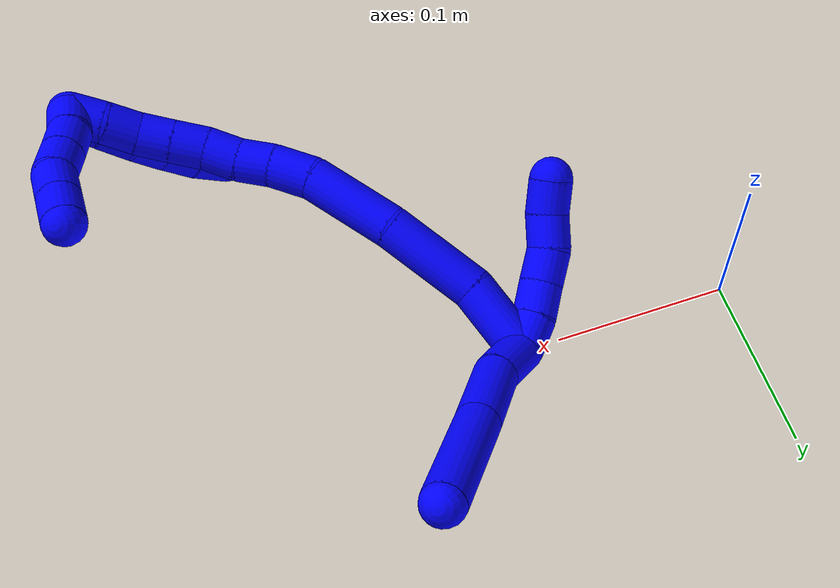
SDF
<sdf version="1.7">
 <world name="default">
  <model name="1">
   <static>0</static>
   <link name="1">
    <collision name="collision-cylinder-e_1_2_8">
     <pose>0.006648 -0.000282 0.014581 0.019307 0.427706 0.004193</pose>
     <geometry><cylinder><radius>0.0125</radius><length>0.032055</length></cylinder></geometry>
     <surface>
      <friction><ode><mu>1.16</mu><mu2>1.16</mu2><slip1>0</slip1><slip2>0</slip2></ode></friction>
      <contact><ode><kp>1e+06</kp><kd>1</kd><max_vel>0</max_vel><min_depth>0.001</min_depth></ode></contact>
     </surface>
    </collision>
    <visual name="visual-cylinder-e_1_2_8">
     <pose>0.006648 -0.000282 0.014581 0.019307 0.427706 0.004193</pose>
     <geometry><cylinder><radius>0.0125</radius><length>0.032055</length></cylinder></geometry>
     <material><ambient>0 0 1 1</ambient></material>
    </visual>
    <collision name="collision-cylinder-e_2_8_9">
     <pose>0.021432 0.004907 0.049889 -0.258045 0.362733 -0.047576</pose>
     <geometry><cylinder><radius>0.0125</radius><length>0.045857</length></cylinder></geometry>
     <surface>
      <friction><ode><mu>1.16</mu><mu2>1.16</mu2><slip1>0</slip1><slip2>0</slip2></ode></friction>
      <contact><ode><kp>1e+06</kp><kd>1</kd><max_vel>0</max_vel><min_depth>0.001</min_depth></ode></contact>
     </surface>
    </collision>
    <visual name="visual-cylinder-e_2_8_9">
     <pose>0.021432 0.004907 0.049889 -0.258045 0.362733 -0.047576</pose>
     <geometry><cylinder><radius>0.0125</radius><length>0.045857</length></cylinder></geometry>
     <material><ambient>0 0 1 1</ambient></material>
    </visual>
    <collision name="collision-cylinder-e_3_9_6">
     <pose>0.041675 0.01795 0.10371 -0.224928 0.342583 -0.039069</pose>
     <geometry><cylinder><radius>0.0125</radius><length>0.072088</length></cylinder></geometry>
     <surface>
      <friction><ode><mu>1.16</mu><mu2>1.16</mu2><slip1>0</slip1><slip2>0</slip2></ode></friction>
      <contact><ode><kp>1e+06</kp><kd>1</kd><max_vel>0</max_vel><min_depth>0.001</min_depth></ode></contact>
     </surface>
    </collision>
    <visual name="visual-cylinder-e_3_9_6">
     <pose>0.041675 0.01795 0.10371 -0.224928 0.342583 -0.039069</pose>
     <geometry><cylinder><radius>0.0125</radius><length>0.072088</length></cylinder></geometry>
     <material><ambient>0 0 1 1</ambient></material>
    </visual>
    <collision name="collision-cylinder-e_1_2_10">
     <pose>-0.008597 -0.002946 -0.004174 2.52689 -1.0346 -2.12388</pose>
     <geometry><cylinder><radius>0.0125</radius><length>0.02</length></cylinder></geometry>
     <surface>
      <friction><ode><mu>1.16</mu><mu2>1.16</mu2><slip1>0</slip1><slip2>0</slip2></ode></friction>
      <contact><ode><kp>1e+06</kp><kd>1</kd><max_vel>0</max_vel><min_depth>0.001</min_depth></ode></contact>
     </surface>
    </collision>
    <visual name="visual-cylinder-e_1_2_10">
     <pose>-0.008597 -0.002946 -0.004174 2.52689 -1.0346 -2.12388</pose>
     <geometry><cylinder><radius>0.0125</radius><length>0.02</length></cylinder></geometry>
     <material><ambient>0 0 1 1</ambient></material>
    </visual>
    <collision name="collision-cylinder-e_2_10_11">
     <pose>-0.025248 -0.010473 -0.012107 2.2581 -0.936459 -1.63786</pose>
     <geometry><cylinder><radius>0.0125</radius><length>0.02</length></cylinder></geometry>
     <surface>
      <friction><ode><mu>1.16</mu><mu2>1.16</mu2><slip1>0</slip1><slip2>0</slip2></ode></friction>
      <contact><ode><kp>1e+06</kp><kd>1</kd><max_vel>0</max_vel><min_depth>0.001</min_depth></ode></contact>
     </surface>
    </collision>
    <visual name="visual-cylinder-e_2_10_11">
     <pose>-0.025248 -0.010473 -0.012107 2.2581 -0.936459 -1.63786</pose>
     <geometry><cylinder><radius>0.0125</radius><length>0.02</length></cylinder></geometry>
     <material><ambient>0 0 1 1</ambient></material>
    </visual>
    <collision name="collision-cylinder-e_3_11_12">
     <pose>-0.042199 -0.019348 -0.017424 1.91874 -1.09653 -1.4333</pose>
     <geometry><cylinder><radius>0.0125</radius><length>0.02</length></cylinder></geometry>
     <surface>
      <friction><ode><mu>1.16</mu><mu2>1.16</mu2><slip1>0</slip1><slip2>0</slip2></ode></friction>
      <contact><ode><kp>1e+06</kp><kd>1</kd><max_vel>0</max_vel><min_depth>0.001</min_depth></ode></contact>
     </surface>
    </collision>
    <visual name="visual-cylinder-e_3_11_12">
     <pose>-0.042199 -0.019348 -0.017424 1.91874 -1.09653 -1.4333</pose>
     <geometry><cylinder><radius>0.0125</radius><length>0.02</length></cylinder></geometry>
     <material><ambient>0 0 1 1</ambient></material>
    </visual>
    <collision name="collision-cylinder-e_4_12_13">
     <pose>-0.058537 -0.030272 -0.019784 1.69129 -0.839378 -0.932865</pose>
     <geometry><cylinder><radius>0.0125</radius><length>0.02</length></cylinder></geometry>
     <surface>
      <friction><ode><mu>1.16</mu><mu2>1.16</mu2><slip1>0</slip1><slip2>0</slip2></ode></friction>
      <contact><ode><kp>1e+06</kp><kd>1</kd><max_vel>0</max_vel><min_depth>0.001</min_depth></ode></contact>
     </surface>
    </collision>
    <visual name="visual-cylinder-e_4_12_13">
     <pose>-0.058537 -0.030272 -0.019784 1.69129 -0.839378 -0.932865</pose>
     <geometry><cylinder><radius>0.0125</radius><length>0.02</length></cylinder></geometry>
     <material><ambient>0 0 1 1</ambient></material>
    </visual>
    <collision name="collision-cylinder-e_5_13_5">
     <pose>-0.074586 -0.041915 -0.019691 1.39381 -1.03647 -0.890621</pose>
     <geometry><cylinder><radius>0.0125</radius><length>0.02</length></cylinder></geometry>
     <surface>
      <friction><ode><mu>1.16</mu><mu2>1.16</mu2><slip1>0</slip1><slip2>0</slip2></ode></friction>
      <contact><ode><kp>1e+06</kp><kd>1</kd><max_vel>0</max_vel><min_depth>0.001</min_depth></ode></contact>
     </surface>
    </collision>
    <visual name="visual-cylinder-e_5_13_5">
     <pose>-0.074586 -0.041915 -0.019691 1.39381 -1.03647 -0.890621</pose>
     <geometry><cylinder><radius>0.0125</radius><length>0.02</length></cylinder></geometry>
     <material><ambient>0 0 1 1</ambient></material>
    </visual>
    <collision name="collision-cylinder-e_1_2_14">
     <pose>-0.004747 -0.021273 -0.001294 1.63154 -0.219166 -0.23278</pose>
     <geometry><cylinder><radius>0.0125</radius><length>0.043669</length></cylinder></geometry>
     <surface>
      <friction><ode><mu>1.16</mu><mu2>1.16</mu2><slip1>0</slip1><slip2>0</slip2></ode></friction>
      <contact><ode><kp>1e+06</kp><kd>1</kd><max_vel>0</max_vel><min_depth>0.001</min_depth></ode></contact>
     </surface>
    </collision>
    <visual name="visual-cylinder-e_1_2_14">
     <pose>-0.004747 -0.021273 -0.001294 1.63154 -0.219166 -0.23278</pose>
     <geometry><cylinder><radius>0.0125</radius><length>0.043669</length></cylinder></geometry>
     <material><ambient>0 0 1 1</ambient></material>
    </visual>
    <collision name="collision-cylinder-e_2_14_15">
     <pose>-0.009152 -0.071353 0.000274 1.4718 0.011834 0.010717</pose>
     <geometry><cylinder><radius>0.0125</radius><length>0.057902</length></cylinder></geometry>
     <surface>
      <friction><ode><mu>1.16</mu><mu2>1.16</mu2><slip1>0</slip1><slip2>0</slip2></ode></friction>
      <contact><ode><kp>1e+06</kp><kd>1</kd><max_vel>0</max_vel><min_depth>0.001</min_depth></ode></contact>
     </surface>
    </collision>
    <visual name="visual-cylinder-e_2_14_15">
     <pose>-0.009152 -0.071353 0.000274 1.4718 0.011834 0.010717</pose>
     <geometry><cylinder><radius>0.0125</radius><length>0.057902</length></cylinder></geometry>
     <material><ambient>0 0 1 1</ambient></material>
    </visual>
    <collision name="collision-cylinder-e_3_15_16">
     <pose>-0.005687 -0.126664 0.002745 1.58552 0.117258 0.118993</pose>
     <geometry><cylinder><radius>0.0125</radius><length>0.053381</length></cylinder></geometry>
     <surface>
      <friction><ode><mu>1.16</mu><mu2>1.16</mu2><slip1>0</slip1><slip2>0</slip2></ode></friction>
      <contact><ode><kp>1e+06</kp><kd>1</kd><max_vel>0</max_vel><min_depth>0.001</min_depth></ode></contact>
     </surface>
    </collision>
    <visual name="visual-cylinder-e_3_15_16">
     <pose>-0.005687 -0.126664 0.002745 1.58552 0.117258 0.118993</pose>
     <geometry><cylinder><radius>0.0125</radius><length>0.053381</length></cylinder></geometry>
     <material><ambient>0 0 1 1</ambient></material>
    </visual>
    <collision name="collision-cylinder-e_4_16_17">
     <pose>0.001743 -0.164787 0.002702 1.54086 0.354839 0.344582</pose>
     <geometry><cylinder><radius>0.0125</radius><length>0.024792</length></cylinder></geometry>
     <surface>
      <friction><ode><mu>1.16</mu><mu2>1.16</mu2><slip1>0</slip1><slip2>0</slip2></ode></friction>
      <contact><ode><kp>1e+06</kp><kd>1</kd><max_vel>0</max_vel><min_depth>0.001</min_depth></ode></contact>
     </surface>
    </collision>
    <visual name="visual-cylinder-e_4_16_17">
     <pose>0.001743 -0.164787 0.002702 1.54086 0.354839 0.344582</pose>
     <geometry><cylinder><radius>0.0125</radius><length>0.024792</length></cylinder></geometry>
     <material><ambient>0 0 1 1</ambient></material>
    </visual>
    <collision name="collision-cylinder-e_5_17_18">
     <pose>0.01076 -0.185228 0.004142 1.44771 0.487218 0.432512</pose>
     <geometry><cylinder><radius>0.0125</radius><length>0.020122</length></cylinder></geometry>
     <surface>
      <friction><ode><mu>1.16</mu><mu2>1.16</mu2><slip1>0</slip1><slip2>0</slip2></ode></friction>
      <contact><ode><kp>1e+06</kp><kd>1</kd><max_vel>0</max_vel><min_depth>0.001</min_depth></ode></contact>
     </surface>
    </collision>
    <visual name="visual-cylinder-e_5_17_18">
     <pose>0.01076 -0.185228 0.004142 1.44771 0.487218 0.432512</pose>
     <geometry><cylinder><radius>0.0125</radius><length>0.020122</length></cylinder></geometry>
     <material><ambient>0 0 1 1</ambient></material>
    </visual>
    <collision name="collision-cylinder-e_6_18_19">
     <pose>0.018481 -0.203469 0.006804 1.40557 0.305508 0.259352</pose>
     <geometry><cylinder><radius>0.0125</radius><length>0.020022</length></cylinder></geometry>
     <surface>
      <friction><ode><mu>1.16</mu><mu2>1.16</mu2><slip1>0</slip1><slip2>0</slip2></ode></friction>
      <contact><ode><kp>1e+06</kp><kd>1</kd><max_vel>0</max_vel><min_depth>0.001</min_depth></ode></contact>
     </surface>
    </collision>
    <visual name="visual-cylinder-e_6_18_19">
     <pose>0.018481 -0.203469 0.006804 1.40557 0.305508 0.259352</pose>
     <geometry><cylinder><radius>0.0125</radius><length>0.020022</length></cylinder></geometry>
     <material><ambient>0 0 1 1</ambient></material>
    </visual>
    <collision name="collision-cylinder-e_7_19_20">
     <pose>0.025509 -0.221534 0.011437 1.23039 0.412739 0.293757</pose>
     <geometry><cylinder><radius>0.0125</radius><length>0.020029</length></cylinder></geometry>
     <surface>
      <friction><ode><mu>1.16</mu><mu2>1.16</mu2><slip1>0</slip1><slip2>0</slip2></ode></friction>
      <contact><ode><kp>1e+06</kp><kd>1</kd><max_vel>0</max_vel><min_depth>0.001</min_depth></ode></contact>
     </surface>
    </collision>
    <visual name="visual-cylinder-e_7_19_20">
     <pose>0.025509 -0.221534 0.011437 1.23039 0.412739 0.293757</pose>
     <geometry><cylinder><radius>0.0125</radius><length>0.020029</length></cylinder></geometry>
     <material><ambient>0 0 1 1</ambient></material>
    </visual>
    <collision name="collision-cylinder-e_8_20_21">
     <pose>0.033423 -0.238858 0.017605 1.22712 0.400016 0.283605</pose>
     <geometry><cylinder><radius>0.0125</radius><length>0.020011</length></cylinder></geometry>
     <surface>
      <friction><ode><mu>1.16</mu><mu2>1.16</mu2><slip1>0</slip1><slip2>0</slip2></ode></friction>
      <contact><ode><kp>1e+06</kp><kd>1</kd><max_vel>0</max_vel><min_depth>0.001</min_depth></ode></contact>
     </surface>
    </collision>
    <visual name="visual-cylinder-e_8_20_21">
     <pose>0.033423 -0.238858 0.017605 1.22712 0.400016 0.283605</pose>
     <geometry><cylinder><radius>0.0125</radius><length>0.020011</length></cylinder></geometry>
     <material><ambient>0 0 1 1</ambient></material>
    </visual>
    <collision name="collision-cylinder-e_9_21_22">
     <pose>0.039801 -0.255754 0.025861 1.011 0.250467 0.13913</pose>
     <geometry><cylinder><radius>0.0125</radius><length>0.020026</length></cylinder></geometry>
     <surface>
      <friction><ode><mu>1.16</mu><mu2>1.16</mu2><slip1>0</slip1><slip2>0</slip2></ode></friction>
      <contact><ode><kp>1e+06</kp><kd>1</kd><max_vel>0</max_vel><min_depth>0.001</min_depth></ode></contact>
     </surface>
    </collision>
    <visual name="visual-cylinder-e_9_21_22">
     <pose>0.039801 -0.255754 0.025861 1.011 0.250467 0.13913</pose>
     <geometry><cylinder><radius>0.0125</radius><length>0.020026</length></cylinder></geometry>
     <material><ambient>0 0 1 1</ambient></material>
    </visual>
    <collision name="collision-cylinder-e_10_22_1">
     <pose>0.045699 -0.272841 0.034201 1.2256 0.347841 0.245816</pose>
     <geometry><cylinder><radius>0.0125</radius><length>0.020047</length></cylinder></geometry>
     <surface>
      <friction><ode><mu>1.16</mu><mu2>1.16</mu2><slip1>0</slip1><slip2>0</slip2></ode></friction>
      <contact><ode><kp>1e+06</kp><kd>1</kd><max_vel>0</max_vel><min_depth>0.001</min_depth></ode></contact>
     </surface>
    </collision>
    <visual name="visual-cylinder-e_10_22_1">
     <pose>0.045699 -0.272841 0.034201 1.2256 0.347841 0.245816</pose>
     <geometry><cylinder><radius>0.0125</radius><length>0.020047</length></cylinder></geometry>
     <material><ambient>0 0 1 1</ambient></material>
    </visual>
    <collision name="collision-cylinder-e_1_1_23">
     <pose>0.04786 -0.273465 0.031869 -2.16082 -0.125954 0.235144</pose>
     <geometry><cylinder><radius>0.0125</radius><length>0.02</length></cylinder></geometry>
     <surface>
      <friction><ode><mu>1.16</mu><mu2>1.16</mu2><slip1>0</slip1><slip2>0</slip2></ode></friction>
      <contact><ode><kp>1e+06</kp><kd>1</kd><max_vel>0</max_vel><min_depth>0.001</min_depth></ode></contact>
     </surface>
    </collision>
    <visual name="visual-cylinder-e_1_1_23">
     <pose>0.04786 -0.273465 0.031869 -2.16082 -0.125954 0.235144</pose>
     <geometry><cylinder><radius>0.0125</radius><length>0.02</length></cylinder></geometry>
     <material><ambient>0 0 1 1</ambient></material>
    </visual>
    <collision name="collision-cylinder-e_2_23_24">
     <pose>0.044681 -0.257178 0.020728 -2.18078 -0.19343 0.368122</pose>
     <geometry><cylinder><radius>0.0125</radius><length>0.02</length></cylinder></geometry>
     <surface>
      <friction><ode><mu>1.16</mu><mu2>1.16</mu2><slip1>0</slip1><slip2>0</slip2></ode></friction>
      <contact><ode><kp>1e+06</kp><kd>1</kd><max_vel>0</max_vel><min_depth>0.001</min_depth></ode></contact>
     </surface>
    </collision>
    <visual name="visual-cylinder-e_2_23_24">
     <pose>0.044681 -0.257178 0.020728 -2.18078 -0.19343 0.368122</pose>
     <geometry><cylinder><radius>0.0125</radius><length>0.02</length></cylinder></geometry>
     <material><ambient>0 0 1 1</ambient></material>
    </visual>
    <collision name="collision-cylinder-e_3_24_25">
     <pose>0.041313 -0.24288 0.007438 -2.4574 -0.145107 0.402676</pose>
     <geometry><cylinder><radius>0.0125</radius><length>0.02</length></cylinder></geometry>
     <surface>
      <friction><ode><mu>1.16</mu><mu2>1.16</mu2><slip1>0</slip1><slip2>0</slip2></ode></friction>
      <contact><ode><kp>1e+06</kp><kd>1</kd><max_vel>0</max_vel><min_depth>0.001</min_depth></ode></contact>
     </surface>
    </collision>
    <visual name="visual-cylinder-e_3_24_25">
     <pose>0.041313 -0.24288 0.007438 -2.4574 -0.145107 0.402676</pose>
     <geometry><cylinder><radius>0.0125</radius><length>0.02</length></cylinder></geometry>
     <material><ambient>0 0 1 1</ambient></material>
    </visual>
    <collision name="collision-cylinder-e_4_25_26">
     <pose>0.037763 -0.229935 -0.007357 -2.38777 -0.212022 0.525232</pose>
     <geometry><cylinder><radius>0.0125</radius><length>0.02</length></cylinder></geometry>
     <surface>
      <friction><ode><mu>1.16</mu><mu2>1.16</mu2><slip1>0</slip1><slip2>0</slip2></ode></friction>
      <contact><ode><kp>1e+06</kp><kd>1</kd><max_vel>0</max_vel><min_depth>0.001</min_depth></ode></contact>
     </surface>
    </collision>
    <visual name="visual-cylinder-e_4_25_26">
     <pose>0.037763 -0.229935 -0.007357 -2.38777 -0.212022 0.525232</pose>
     <geometry><cylinder><radius>0.0125</radius><length>0.02</length></cylinder></geometry>
     <material><ambient>0 0 1 1</ambient></material>
    </visual>
    <collision name="collision-cylinder-e_5_26_4">
     <pose>0.032088 -0.216779 -0.021226 -2.37717 -0.365141 0.861105</pose>
     <geometry><cylinder><radius>0.0125</radius><length>0.02</length></cylinder></geometry>
     <surface>
      <friction><ode><mu>1.16</mu><mu2>1.16</mu2><slip1>0</slip1><slip2>0</slip2></ode></friction>
      <contact><ode><kp>1e+06</kp><kd>1</kd><max_vel>0</max_vel><min_depth>0.001</min_depth></ode></contact>
     </surface>
    </collision>
    <visual name="visual-cylinder-e_5_26_4">
     <pose>0.032088 -0.216779 -0.021226 -2.37717 -0.365141 0.861105</pose>
     <geometry><cylinder><radius>0.0125</radius><length>0.02</length></cylinder></geometry>
     <material><ambient>0 0 1 1</ambient></material>
    </visual>
    <collision name="collision-cylinder-e_1_1_27">
     <pose>0.051283 -0.27532 0.044771 -0.713323 0.218379 -0.081647</pose>
     <geometry><cylinder><radius>0.0125</radius><length>0.02</length></cylinder></geometry>
     <surface>
      <friction><ode><mu>1.16</mu><mu2>1.16</mu2><slip1>0</slip1><slip2>0</slip2></ode></friction>
      <contact><ode><kp>1e+06</kp><kd>1</kd><max_vel>0</max_vel><min_depth>0.001</min_depth></ode></contact>
     </surface>
    </collision>
    <visual name="visual-cylinder-e_1_1_27">
     <pose>0.051283 -0.27532 0.044771 -0.713323 0.218379 -0.081647</pose>
     <geometry><cylinder><radius>0.0125</radius><length>0.02</length></cylinder></geometry>
     <material><ambient>0 0 1 1</ambient></material>
    </visual>
    <collision name="collision-cylinder-e_2_27_28">
     <pose>0.057156 -0.264113 0.060093 -0.545515 0.379774 -0.107426</pose>
     <geometry><cylinder><radius>0.0125</radius><length>0.02</length></cylinder></geometry>
     <surface>
      <friction><ode><mu>1.16</mu><mu2>1.16</mu2><slip1>0</slip1><slip2>0</slip2></ode></friction>
      <contact><ode><kp>1e+06</kp><kd>1</kd><max_vel>0</max_vel><min_depth>0.001</min_depth></ode></contact>
     </surface>
    </collision>
    <visual name="visual-cylinder-e_2_27_28">
     <pose>0.057156 -0.264113 0.060093 -0.545515 0.379774 -0.107426</pose>
     <geometry><cylinder><radius>0.0125</radius><length>0.02</length></cylinder></geometry>
     <material><ambient>0 0 1 1</ambient></material>
    </visual>
    <collision name="collision-cylinder-e_3_28_29">
     <pose>0.064465 -0.254595 0.076092 -0.527927 0.368419 -0.100629</pose>
     <geometry><cylinder><radius>0.0125</radius><length>0.02</length></cylinder></geometry>
     <surface>
      <friction><ode><mu>1.16</mu><mu2>1.16</mu2><slip1>0</slip1><slip2>0</slip2></ode></friction>
      <contact><ode><kp>1e+06</kp><kd>1</kd><max_vel>0</max_vel><min_depth>0.001</min_depth></ode></contact>
     </surface>
    </collision>
    <visual name="visual-cylinder-e_3_28_29">
     <pose>0.064465 -0.254595 0.076092 -0.527927 0.368419 -0.100629</pose>
     <geometry><cylinder><radius>0.0125</radius><length>0.02</length></cylinder></geometry>
     <material><ambient>0 0 1 1</ambient></material>
    </visual>
    <collision name="collision-cylinder-e_4_29_30">
     <pose>0.070118 -0.242586 0.090659 -0.843345 0.20665 -0.092963</pose>
     <geometry><cylinder><radius>0.0125</radius><length>0.02</length></cylinder></geometry>
     <surface>
      <friction><ode><mu>1.16</mu><mu2>1.16</mu2><slip1>0</slip1><slip2>0</slip2></ode></friction>
      <contact><ode><kp>1e+06</kp><kd>1</kd><max_vel>0</max_vel><min_depth>0.001</min_depth></ode></contact>
     </surface>
    </collision>
    <visual name="visual-cylinder-e_4_29_30">
     <pose>0.070118 -0.242586 0.090659 -0.843345 0.20665 -0.092963</pose>
     <geometry><cylinder><radius>0.0125</radius><length>0.02</length></cylinder></geometry>
     <material><ambient>0 0 1 1</ambient></material>
    </visual>
    <collision name="collision-cylinder-e_5_30_3">
     <pose>0.074235 -0.227942 0.103643 -0.847434 0.208067 -0.094117</pose>
     <geometry><cylinder><radius>0.0125</radius><length>0.02</length></cylinder></geometry>
     <surface>
      <friction><ode><mu>1.16</mu><mu2>1.16</mu2><slip1>0</slip1><slip2>0</slip2></ode></friction>
      <contact><ode><kp>1e+06</kp><kd>1</kd><max_vel>0</max_vel><min_depth>0.001</min_depth></ode></contact>
     </surface>
    </collision>
    <visual name="visual-cylinder-e_5_30_3">
     <pose>0.074235 -0.227942 0.103643 -0.847434 0.208067 -0.094117</pose>
     <geometry><cylinder><radius>0.0125</radius><length>0.02</length></cylinder></geometry>
     <material><ambient>0 0 1 1</ambient></material>
    </visual>
    <collision name="collision-sphere-3">
     <pose>0.076301 -0.220607 0.11012 0 -0 0</pose>
     <geometry><sphere><radius>0.0125</radius></sphere></geometry>
     <surface>
      <friction><ode><mu>1.16</mu><mu2>1.16</mu2><slip1>0</slip1><slip2>0</slip2></ode></friction>
      <contact><ode><kp>1e+06</kp><kd>1</kd><max_vel>0</max_vel><min_depth>0.001</min_depth></ode></contact>
     </surface>
    </collision>
    <visual name="visual-sphere-3">
     <pose>0.076301 -0.220607 0.11012 0 -0 0</pose>
     <geometry><sphere><radius>0.0125</radius></sphere></geometry>
     <material><ambient>0 0 1 1</ambient></material>
    </visual>
    <collision name="collision-sphere-30">
     <pose>0.07217 -0.235276 0.097167 0 -0 0</pose>
     <geometry><sphere><radius>0.0125</radius></sphere></geometry>
     <surface>
      <friction><ode><mu>1.16</mu><mu2>1.16</mu2><slip1>0</slip1><slip2>0</slip2></ode></friction>
      <contact><ode><kp>1e+06</kp><kd>1</kd><max_vel>0</max_vel><min_depth>0.001</min_depth></ode></contact>
     </surface>
    </collision>
    <visual name="visual-sphere-30">
     <pose>0.07217 -0.235276 0.097167 0 -0 0</pose>
     <geometry><sphere><radius>0.0125</radius></sphere></geometry>
     <material><ambient>0 0 1 1</ambient></material>
    </visual>
    <collision name="collision-sphere-29">
     <pose>0.068066 -0.249895 0.084151 0 -0 0</pose>
     <geometry><sphere><radius>0.0125</radius></sphere></geometry>
     <surface>
      <friction><ode><mu>1.16</mu><mu2>1.16</mu2><slip1>0</slip1><slip2>0</slip2></ode></friction>
      <contact><ode><kp>1e+06</kp><kd>1</kd><max_vel>0</max_vel><min_depth>0.001</min_depth></ode></contact>
     </surface>
    </collision>
    <visual name="visual-sphere-29">
     <pose>0.068066 -0.249895 0.084151 0 -0 0</pose>
     <geometry><sphere><radius>0.0125</radius></sphere></geometry>
     <material><ambient>0 0 1 1</ambient></material>
    </visual>
    <collision name="collision-sphere-28">
     <pose>0.060863 -0.259294 0.068033 0 -0 0</pose>
     <geometry><sphere><radius>0.0125</radius></sphere></geometry>
     <surface>
      <friction><ode><mu>1.16</mu><mu2>1.16</mu2><slip1>0</slip1><slip2>0</slip2></ode></friction>
      <contact><ode><kp>1e+06</kp><kd>1</kd><max_vel>0</max_vel><min_depth>0.001</min_depth></ode></contact>
     </surface>
    </collision>
    <visual name="visual-sphere-28">
     <pose>0.060863 -0.259294 0.068033 0 -0 0</pose>
     <geometry><sphere><radius>0.0125</radius></sphere></geometry>
     <material><ambient>0 0 1 1</ambient></material>
    </visual>
    <collision name="collision-sphere-27">
     <pose>0.053449 -0.268932 0.052154 0 -0 0</pose>
     <geometry><sphere><radius>0.0125</radius></sphere></geometry>
     <surface>
      <friction><ode><mu>1.16</mu><mu2>1.16</mu2><slip1>0</slip1><slip2>0</slip2></ode></friction>
      <contact><ode><kp>1e+06</kp><kd>1</kd><max_vel>0</max_vel><min_depth>0.001</min_depth></ode></contact>
     </surface>
    </collision>
    <visual name="visual-sphere-27">
     <pose>0.053449 -0.268932 0.052154 0 -0 0</pose>
     <geometry><sphere><radius>0.0125</radius></sphere></geometry>
     <material><ambient>0 0 1 1</ambient></material>
    </visual>
    <collision name="collision-sphere-4">
     <pose>0.028517 -0.210314 -0.027968 0 -0 0</pose>
     <geometry><sphere><radius>0.0125</radius></sphere></geometry>
     <surface>
      <friction><ode><mu>1.16</mu><mu2>1.16</mu2><slip1>0</slip1><slip2>0</slip2></ode></friction>
      <contact><ode><kp>1e+06</kp><kd>1</kd><max_vel>0</max_vel><min_depth>0.001</min_depth></ode></contact>
     </surface>
    </collision>
    <visual name="visual-sphere-4">
     <pose>0.028517 -0.210314 -0.027968 0 -0 0</pose>
     <geometry><sphere><radius>0.0125</radius></sphere></geometry>
     <material><ambient>0 0 1 1</ambient></material>
    </visual>
    <collision name="collision-sphere-26">
     <pose>0.035658 -0.223244 -0.014485 0 -0 0</pose>
     <geometry><sphere><radius>0.0125</radius></sphere></geometry>
     <surface>
      <friction><ode><mu>1.16</mu><mu2>1.16</mu2><slip1>0</slip1><slip2>0</slip2></ode></friction>
      <contact><ode><kp>1e+06</kp><kd>1</kd><max_vel>0</max_vel><min_depth>0.001</min_depth></ode></contact>
     </surface>
    </collision>
    <visual name="visual-sphere-26">
     <pose>0.035658 -0.223244 -0.014485 0 -0 0</pose>
     <geometry><sphere><radius>0.0125</radius></sphere></geometry>
     <material><ambient>0 0 1 1</ambient></material>
    </visual>
    <collision name="collision-sphere-25">
     <pose>0.039867 -0.236626 -0.000229 0 -0 0</pose>
     <geometry><sphere><radius>0.0125</radius></sphere></geometry>
     <surface>
      <friction><ode><mu>1.16</mu><mu2>1.16</mu2><slip1>0</slip1><slip2>0</slip2></ode></friction>
      <contact><ode><kp>1e+06</kp><kd>1</kd><max_vel>0</max_vel><min_depth>0.001</min_depth></ode></contact>
     </surface>
    </collision>
    <visual name="visual-sphere-25">
     <pose>0.039867 -0.236626 -0.000229 0 -0 0</pose>
     <geometry><sphere><radius>0.0125</radius></sphere></geometry>
     <material><ambient>0 0 1 1</ambient></material>
    </visual>
    <collision name="collision-sphere-24">
     <pose>0.042759 -0.249134 0.015106 0 -0 0</pose>
     <geometry><sphere><radius>0.0125</radius></sphere></geometry>
     <surface>
      <friction><ode><mu>1.16</mu><mu2>1.16</mu2><slip1>0</slip1><slip2>0</slip2></ode></friction>
      <contact><ode><kp>1e+06</kp><kd>1</kd><max_vel>0</max_vel><min_depth>0.001</min_depth></ode></contact>
     </surface>
    </collision>
    <visual name="visual-sphere-24">
     <pose>0.042759 -0.249134 0.015106 0 -0 0</pose>
     <geometry><sphere><radius>0.0125</radius></sphere></geometry>
     <material><ambient>0 0 1 1</ambient></material>
    </visual>
    <collision name="collision-sphere-23">
     <pose>0.046604 -0.265221 0.02635 0 -0 0</pose>
     <geometry><sphere><radius>0.0125</radius></sphere></geometry>
     <surface>
      <friction><ode><mu>1.16</mu><mu2>1.16</mu2><slip1>0</slip1><slip2>0</slip2></ode></friction>
      <contact><ode><kp>1e+06</kp><kd>1</kd><max_vel>0</max_vel><min_depth>0.001</min_depth></ode></contact>
     </surface>
    </collision>
    <visual name="visual-sphere-23">
     <pose>0.046604 -0.265221 0.02635 0 -0 0</pose>
     <geometry><sphere><radius>0.0125</radius></sphere></geometry>
     <material><ambient>0 0 1 1</ambient></material>
    </visual>
    <collision name="collision-sphere-1">
     <pose>0.049116 -0.281708 0.037389 0 -0 0</pose>
     <geometry><sphere><radius>0.0125</radius></sphere></geometry>
     <surface>
      <friction><ode><mu>1.16</mu><mu2>1.16</mu2><slip1>0</slip1><slip2>0</slip2></ode></friction>
      <contact><ode><kp>1e+06</kp><kd>1</kd><max_vel>0</max_vel><min_depth>0.001</min_depth></ode></contact>
     </surface>
    </collision>
    <visual name="visual-sphere-1">
     <pose>0.049116 -0.281708 0.037389 0 -0 0</pose>
     <geometry><sphere><radius>0.0125</radius></sphere></geometry>
     <material><ambient>0 0 1 1</ambient></material>
    </visual>
    <collision name="collision-sphere-22">
     <pose>0.042283 -0.263974 0.031012 0 -0 0</pose>
     <geometry><sphere><radius>0.0125</radius></sphere></geometry>
     <surface>
      <friction><ode><mu>1.16</mu><mu2>1.16</mu2><slip1>0</slip1><slip2>0</slip2></ode></friction>
      <contact><ode><kp>1e+06</kp><kd>1</kd><max_vel>0</max_vel><min_depth>0.001</min_depth></ode></contact>
     </surface>
    </collision>
    <visual name="visual-sphere-22">
     <pose>0.042283 -0.263974 0.031012 0 -0 0</pose>
     <geometry><sphere><radius>0.0125</radius></sphere></geometry>
     <material><ambient>0 0 1 1</ambient></material>
    </visual>
    <collision name="collision-sphere-21">
     <pose>0.037319 -0.247534 0.02071 0 -0 0</pose>
     <geometry><sphere><radius>0.0125</radius></sphere></geometry>
     <surface>
      <friction><ode><mu>1.16</mu><mu2>1.16</mu2><slip1>0</slip1><slip2>0</slip2></ode></friction>
      <contact><ode><kp>1e+06</kp><kd>1</kd><max_vel>0</max_vel><min_depth>0.001</min_depth></ode></contact>
     </surface>
    </collision>
    <visual name="visual-sphere-21">
     <pose>0.037319 -0.247534 0.02071 0 -0 0</pose>
     <geometry><sphere><radius>0.0125</radius></sphere></geometry>
     <material><ambient>0 0 1 1</ambient></material>
    </visual>
    <collision name="collision-sphere-11">
     <pose>-0.033302 -0.015054 -0.015867 0 -0 0</pose>
     <geometry><sphere><radius>0.0125</radius></sphere></geometry>
     <surface>
      <friction><ode><mu>1.16</mu><mu2>1.16</mu2><slip1>0</slip1><slip2>0</slip2></ode></friction>
      <contact><ode><kp>1e+06</kp><kd>1</kd><max_vel>0</max_vel><min_depth>0.001</min_depth></ode></contact>
     </surface>
    </collision>
    <visual name="visual-sphere-11">
     <pose>-0.033302 -0.015054 -0.015867 0 -0 0</pose>
     <geometry><sphere><radius>0.0125</radius></sphere></geometry>
     <material><ambient>0 0 1 1</ambient></material>
    </visual>
    <collision name="collision-sphere-10">
     <pose>-0.017193 -0.005893 -0.008347 0 -0 0</pose>
     <geometry><sphere><radius>0.0125</radius></sphere></geometry>
     <surface>
      <friction><ode><mu>1.16</mu><mu2>1.16</mu2><slip1>0</slip1><slip2>0</slip2></ode></friction>
      <contact><ode><kp>1e+06</kp><kd>1</kd><max_vel>0</max_vel><min_depth>0.001</min_depth></ode></contact>
     </surface>
    </collision>
    <visual name="visual-sphere-10">
     <pose>-0.017193 -0.005893 -0.008347 0 -0 0</pose>
     <geometry><sphere><radius>0.0125</radius></sphere></geometry>
     <material><ambient>0 0 1 1</ambient></material>
    </visual>
    <collision name="collision-sphere-6">
     <pose>0.053783 0.025522 0.136804 0 -0 0</pose>
     <geometry><sphere><radius>0.0125</radius></sphere></geometry>
     <surface>
      <friction><ode><mu>1.16</mu><mu2>1.16</mu2><slip1>0</slip1><slip2>0</slip2></ode></friction>
      <contact><ode><kp>1e+06</kp><kd>1</kd><max_vel>0</max_vel><min_depth>0.001</min_depth></ode></contact>
     </surface>
    </collision>
    <visual name="visual-sphere-6">
     <pose>0.053783 0.025522 0.136804 0 -0 0</pose>
     <geometry><sphere><radius>0.0125</radius></sphere></geometry>
     <material><ambient>0 0 1 1</ambient></material>
    </visual>
    <collision name="collision-sphere-9">
     <pose>0.029568 0.010378 0.070616 0 -0 0</pose>
     <geometry><sphere><radius>0.0125</radius></sphere></geometry>
     <surface>
      <friction><ode><mu>1.16</mu><mu2>1.16</mu2><slip1>0</slip1><slip2>0</slip2></ode></friction>
      <contact><ode><kp>1e+06</kp><kd>1</kd><max_vel>0</max_vel><min_depth>0.001</min_depth></ode></contact>
     </surface>
    </collision>
    <visual name="visual-sphere-9">
     <pose>0.029568 0.010378 0.070616 0 -0 0</pose>
     <geometry><sphere><radius>0.0125</radius></sphere></geometry>
     <material><ambient>0 0 1 1</ambient></material>
    </visual>
    <collision name="collision-sphere-2">
     <geometry><sphere><radius>0.0125</radius></sphere></geometry>
     <surface>
      <friction><ode><mu>1.16</mu><mu2>1.16</mu2><slip1>0</slip1><slip2>0</slip2></ode></friction>
      <contact><ode><kp>1e+06</kp><kd>1</kd><max_vel>0</max_vel><min_depth>0.001</min_depth></ode></contact>
     </surface>
    </collision>
    <visual name="visual-sphere-2">
     <geometry><sphere><radius>0.0125</radius></sphere></geometry>
     <material><ambient>0 0 1 1</ambient></material>
    </visual>
    <collision name="collision-sphere-19">
     <pose>0.021492 -0.212886 0.008374 0 -0 0</pose>
     <geometry><sphere><radius>0.0125</radius></sphere></geometry>
     <surface>
      <friction><ode><mu>1.16</mu><mu2>1.16</mu2><slip1>0</slip1><slip2>0</slip2></ode></friction>
      <contact><ode><kp>1e+06</kp><kd>1</kd><max_vel>0</max_vel><min_depth>0.001</min_depth></ode></contact>
     </surface>
    </collision>
    <visual name="visual-sphere-19">
     <pose>0.021492 -0.212886 0.008374 0 -0 0</pose>
     <geometry><sphere><radius>0.0125</radius></sphere></geometry>
     <material><ambient>0 0 1 1</ambient></material>
    </visual>
    <collision name="collision-sphere-8">
     <pose>0.013296 -0.000563 0.029162 0 -0 0</pose>
     <geometry><sphere><radius>0.0125</radius></sphere></geometry>
     <surface>
      <friction><ode><mu>1.16</mu><mu2>1.16</mu2><slip1>0</slip1><slip2>0</slip2></ode></friction>
      <contact><ode><kp>1e+06</kp><kd>1</kd><max_vel>0</max_vel><min_depth>0.001</min_depth></ode></contact>
     </surface>
    </collision>
    <visual name="visual-sphere-8">
     <pose>0.013296 -0.000563 0.029162 0 -0 0</pose>
     <geometry><sphere><radius>0.0125</radius></sphere></geometry>
     <material><ambient>0 0 1 1</ambient></material>
    </visual>
    <collision name="collision-sphere-12">
     <pose>-0.051095 -0.023641 -0.018982 0 -0 0</pose>
     <geometry><sphere><radius>0.0125</radius></sphere></geometry>
     <surface>
      <friction><ode><mu>1.16</mu><mu2>1.16</mu2><slip1>0</slip1><slip2>0</slip2></ode></friction>
      <contact><ode><kp>1e+06</kp><kd>1</kd><max_vel>0</max_vel><min_depth>0.001</min_depth></ode></contact>
     </surface>
    </collision>
    <visual name="visual-sphere-12">
     <pose>-0.051095 -0.023641 -0.018982 0 -0 0</pose>
     <geometry><sphere><radius>0.0125</radius></sphere></geometry>
     <material><ambient>0 0 1 1</ambient></material>
    </visual>
    <collision name="collision-sphere-13">
     <pose>-0.06598 -0.036902 -0.020587 0 -0 0</pose>
     <geometry><sphere><radius>0.0125</radius></sphere></geometry>
     <surface>
      <friction><ode><mu>1.16</mu><mu2>1.16</mu2><slip1>0</slip1><slip2>0</slip2></ode></friction>
      <contact><ode><kp>1e+06</kp><kd>1</kd><max_vel>0</max_vel><min_depth>0.001</min_depth></ode></contact>
     </surface>
    </collision>
    <visual name="visual-sphere-13">
     <pose>-0.06598 -0.036902 -0.020587 0 -0 0</pose>
     <geometry><sphere><radius>0.0125</radius></sphere></geometry>
     <material><ambient>0 0 1 1</ambient></material>
    </visual>
    <collision name="collision-sphere-5">
     <pose>-0.083192 -0.046928 -0.018794 0 -0 0</pose>
     <geometry><sphere><radius>0.0125</radius></sphere></geometry>
     <surface>
      <friction><ode><mu>1.16</mu><mu2>1.16</mu2><slip1>0</slip1><slip2>0</slip2></ode></friction>
      <contact><ode><kp>1e+06</kp><kd>1</kd><max_vel>0</max_vel><min_depth>0.001</min_depth></ode></contact>
     </surface>
    </collision>
    <visual name="visual-sphere-5">
     <pose>-0.083192 -0.046928 -0.018794 0 -0 0</pose>
     <geometry><sphere><radius>0.0125</radius></sphere></geometry>
     <material><ambient>0 0 1 1</ambient></material>
    </visual>
    <collision name="collision-sphere-14">
     <pose>-0.009494 -0.042546 -0.002588 0 -0 0</pose>
     <geometry><sphere><radius>0.0125</radius></sphere></geometry>
     <surface>
      <friction><ode><mu>1.16</mu><mu2>1.16</mu2><slip1>0</slip1><slip2>0</slip2></ode></friction>
      <contact><ode><kp>1e+06</kp><kd>1</kd><max_vel>0</max_vel><min_depth>0.001</min_depth></ode></contact>
     </surface>
    </collision>
    <visual name="visual-sphere-14">
     <pose>-0.009494 -0.042546 -0.002588 0 -0 0</pose>
     <geometry><sphere><radius>0.0125</radius></sphere></geometry>
     <material><ambient>0 0 1 1</ambient></material>
    </visual>
    <collision name="collision-sphere-15">
     <pose>-0.008809 -0.10016 0.003135 0 -0 0</pose>
     <geometry><sphere><radius>0.0125</radius></sphere></geometry>
     <surface>
      <friction><ode><mu>1.16</mu><mu2>1.16</mu2><slip1>0</slip1><slip2>0</slip2></ode></friction>
      <contact><ode><kp>1e+06</kp><kd>1</kd><max_vel>0</max_vel><min_depth>0.001</min_depth></ode></contact>
     </surface>
    </collision>
    <visual name="visual-sphere-15">
     <pose>-0.008809 -0.10016 0.003135 0 -0 0</pose>
     <geometry><sphere><radius>0.0125</radius></sphere></geometry>
     <material><ambient>0 0 1 1</ambient></material>
    </visual>
    <collision name="collision-sphere-16">
     <pose>-0.002564 -0.153168 0.002354 0 -0 0</pose>
     <geometry><sphere><radius>0.0125</radius></sphere></geometry>
     <surface>
      <friction><ode><mu>1.16</mu><mu2>1.16</mu2><slip1>0</slip1><slip2>0</slip2></ode></friction>
      <contact><ode><kp>1e+06</kp><kd>1</kd><max_vel>0</max_vel><min_depth>0.001</min_depth></ode></contact>
     </surface>
    </collision>
    <visual name="visual-sphere-16">
     <pose>-0.002564 -0.153168 0.002354 0 -0 0</pose>
     <geometry><sphere><radius>0.0125</radius></sphere></geometry>
     <material><ambient>0 0 1 1</ambient></material>
    </visual>
    <collision name="collision-sphere-17">
     <pose>0.006049 -0.176405 0.00305 0 -0 0</pose>
     <geometry><sphere><radius>0.0125</radius></sphere></geometry>
     <surface>
      <friction><ode><mu>1.16</mu><mu2>1.16</mu2><slip1>0</slip1><slip2>0</slip2></ode></friction>
      <contact><ode><kp>1e+06</kp><kd>1</kd><max_vel>0</max_vel><min_depth>0.001</min_depth></ode></contact>
     </surface>
    </collision>
    <visual name="visual-sphere-17">
     <pose>0.006049 -0.176405 0.00305 0 -0 0</pose>
     <geometry><sphere><radius>0.0125</radius></sphere></geometry>
     <material><ambient>0 0 1 1</ambient></material>
    </visual>
    <collision name="collision-sphere-18">
     <pose>0.01547 -0.194051 0.005233 0 -0 0</pose>
     <geometry><sphere><radius>0.0125</radius></sphere></geometry>
     <surface>
      <friction><ode><mu>1.16</mu><mu2>1.16</mu2><slip1>0</slip1><slip2>0</slip2></ode></friction>
      <contact><ode><kp>1e+06</kp><kd>1</kd><max_vel>0</max_vel><min_depth>0.001</min_depth></ode></contact>
     </surface>
    </collision>
    <visual name="visual-sphere-18">
     <pose>0.01547 -0.194051 0.005233 0 -0 0</pose>
     <geometry><sphere><radius>0.0125</radius></sphere></geometry>
     <material><ambient>0 0 1 1</ambient></material>
    </visual>
    <collision name="collision-sphere-20">
     <pose>0.029526 -0.230181 0.0145 0 -0 0</pose>
     <geometry><sphere><radius>0.0125</radius></sphere></geometry>
     <surface>
      <friction><ode><mu>1.16</mu><mu2>1.16</mu2><slip1>0</slip1><slip2>0</slip2></ode></friction>
      <contact><ode><kp>1e+06</kp><kd>1</kd><max_vel>0</max_vel><min_depth>0.001</min_depth></ode></contact>
     </surface>
    </collision>
    <visual name="visual-sphere-20">
     <pose>0.029526 -0.230181 0.0145 0 -0 0</pose>
     <geometry><sphere><radius>0.0125</radius></sphere></geometry>
     <material><ambient>0 0 1 1</ambient></material>
    </visual>
    <inertial>
     <pose>0.017224 -0.125068 0.025439 0 -0 0</pose>
     <mass>0.75</mass>
     <inertia><ixx>0.000112</ixx><ixy>0</ixy><ixz>0</ixz><iyy>4.6e-05</iyy><iyz>0</iyz><izz>3.3e-05</izz></inertia>
    </inertial>
   </link>
   <pose>0.125138 0.003744 0.01148 -0.233835 0.618176 0.427061</pose>
  </model>
 </world>
</sdf>
